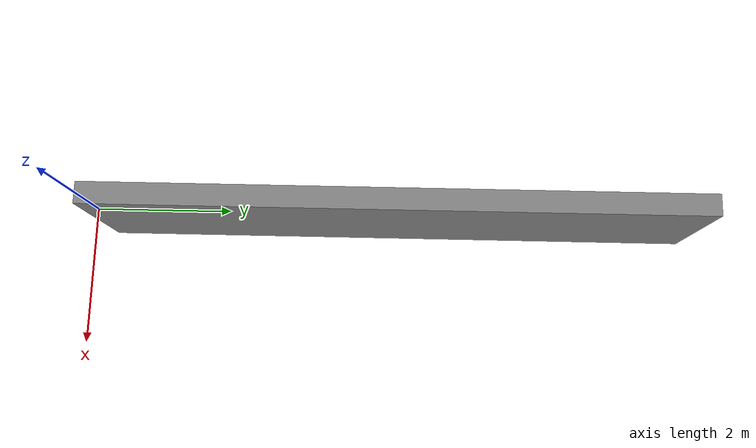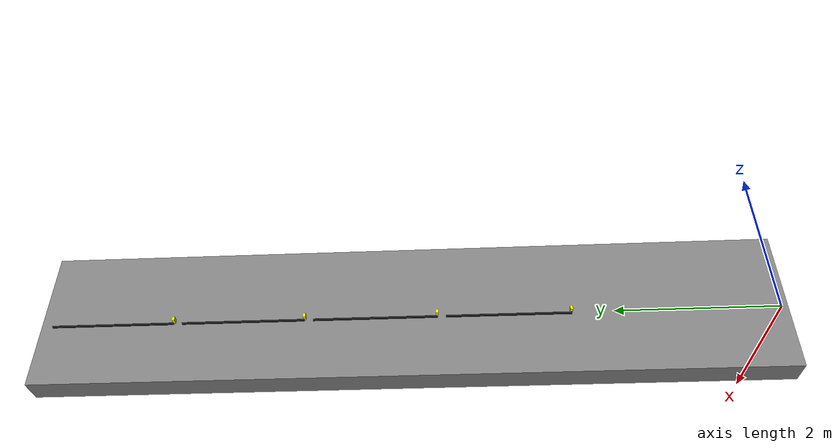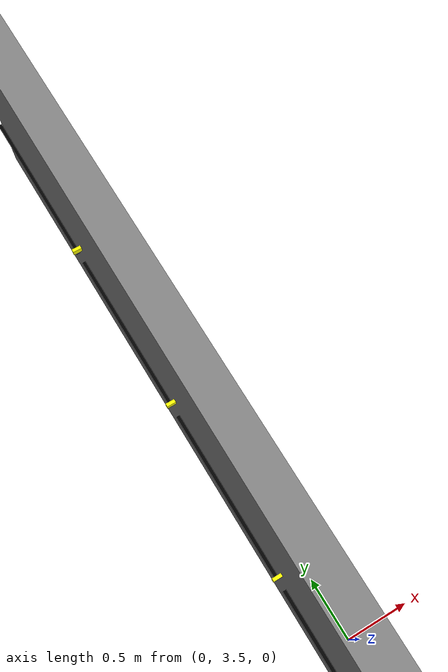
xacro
<?xml version="1.0"?>
<robot xmlns:xacro="http://www.ros.org/wiki/xacro" name="my_conveyor_belt">

    <xacro:property name="base_length" value="9.0"/>
    <xacro:property name="base_width" value="0.32"/>
    <xacro:property name="base_height" value="0.8"/>
    <xacro:property name="axle_length" value="0.03"/>
    <xacro:property name="axle_width" value="0.08"/>
    <xacro:property name="axle_height" value="0.05"/>
    <xacro:property name="arm_length" value="1.50"/>
    <xacro:property name="arm_width" value="0.032"/>
    <xacro:property name="arm_height" value="0.016"/>
    <xacro:property name="axle_spacing" value="1.6"/>
    <xacro:property name="pi_" value="3.14159265359"/>

    <!-- Materials -->
    <material name="gray">
        <color rgba="0.5 0.5 0.5 1.0"/>
    </material>
    <material name="yellow">
        <color rgba="1.0 1.0 0.0 1.0"/>
    </material>
    <material name="black">
        <color rgba="0.0 0.0 0.0 1.0"/>
    </material>

    <!-- Macros for Links -->
    <xacro:macro name="box_link" params="name length width height material mass">
        <link name="${name}">
            <visual>
                <geometry>
                    <box size="${length} ${width} ${height}"/>
                </geometry>
                <origin rpy="0 0 0" xyz="${-length/2} 0 0"/>
                <material name="${material}"/>
            </visual>
            <collision>
                <geometry>
                    <box size="${length} ${width} ${height}"/>
                </geometry>
                <origin rpy="0 0 0" xyz="${-length/2} 0 0"/>
            </collision>
            <inertial>
        <mass value="${mass}"/>
        <inertia ixx="1000" ixy="0.0" ixz="0.0"
                 iyy="1000" iyz="0.0"
                 izz="1000"/>
      </inertial>
        </link>

    </xacro:macro>

    <!-- Macros for Joints -->
    <xacro:macro name="fixed_joint" params="name parent child x y z">
        <joint name="${name}" type="fixed">
            <parent link="${parent}"/>
            <child link="${child}"/>
            <origin xyz="${x} ${y} ${z}" rpy="0 0 0"/>
        </joint>
    </xacro:macro>

    <xacro:macro name="revolute_joint" params="name parent child x y z rpy lower_limit upper_limit axis">
         <joint name="${name}" type="revolute">
            <parent link="${parent}"/>
            <child link="${child}"/>
            <origin xyz="${x} ${y} ${z}" rpy="${rpy}"/>
            <axis xyz="${axis}"/>
            <limit lower="${lower_limit}" upper="${upper_limit}" effort="1000" velocity="100"/>
        </joint>
    </xacro:macro>

    <!-- World Link and Joint to ground the robot -->
    <link name="world_link"/>
    <joint name="world_joint" type="fixed">
        <parent link="world_link"/>
        <child link="base_link"/>

        <origin xyz="0 0 0" rpy="0 0 ${pi * 1.5}"/>
    </joint>

    <!-- Base Link -->
    <xacro:box_link name="base_link" length="${base_length}" width="${base_width}" height="${base_height + 1}" material="gray" mass="10000.0"/>

    <!-- Macro for Axle and Bar unit -->
    <xacro:macro name="axle_and_arm" params="index">

        <xacro:property name="x_pos" value="${-base_length + 1.3 + axle_spacing * (index + 0.23)}"/>

        <xacro:box_link name="axle_${index}" length="${axle_length}" width="${axle_width}" height="${axle_height}" material="yellow" mass="200.0"/>

        <xacro:fixed_joint name="base_to_axle_${index}" parent="base_link" child="axle_${index}"
                           x="${x_pos}" y="${-base_width/2 - axle_width/2}" z="${-base_height/6 + axle_height}"/>

        <!-- Arm (Box) Link -->
        <xacro:box_link name="arm_${index}" length="${arm_length}" width="${arm_width}" height="${arm_height}" material="black" mass="500.0"/>

        <!-- Joint: Axle Link to Bar Link (Revolute) -->
        <xacro:revolute_joint name="axle_${index}_to_arm_${index}"
                              parent="axle_${index}"
                              child="arm_${index}"
                              x="${-axle_length/3}"
                              y="0"
                              z="${-axle_height}"
                              rpy="0 0 0"
                              lower_limit="0"
                              upper_limit="${pi_/4}"
                              axis="0 0 1"
                              />
    </xacro:macro>

    <!-- Create 4 units -->
    <xacro:axle_and_arm index="0"/>
    <xacro:axle_and_arm index="1"/>
    <xacro:axle_and_arm index="2"/>
    <xacro:axle_and_arm index="3"/>

<!-- Plugin Gazebo Classic -->
  <gazebo>
    <plugin name="gazebo_ros2_control" filename="libgazebo_ros2_control.so">
      <robot_namespace>my_conveyor_belt_robot</robot_namespace>
      <parameters>$(find my_conveyor_gazebo)/config/controllers.yaml</parameters>
      <robot_sim_type>gazebo_ros2_control/GazeboSystem</robot_sim_type>
    </plugin>
  </gazebo>

  <!-- ROS 2 Control hardware interface -->
  <ros2_control name="GazeboSystem" type="system">
    <hardware>
      <plugin>gazebo_ros2_control/GazeboSystem</plugin>
    </hardware>
    <joint name="axle_0_to_arm_0">
      <command_interface name="position"/>
      <state_interface name="position"/>
      <state_interface name="velocity"/>
    </joint>
    <joint name="axle_1_to_arm_1">
      <command_interface name="position"/>
      <state_interface name="position"/>
      <state_interface name="velocity"/>
    </joint>
    <joint name="axle_2_to_arm_2">
      <command_interface name="position"/>
      <state_interface name="position"/>
      <state_interface name="velocity"/>
    </joint>
    <joint name="axle_3_to_arm_3">
      <command_interface name="position"/>
      <state_interface name="position"/>
      <state_interface name="velocity"/>
    </joint>
  </ros2_control>

  <!-- Gazebo Material -->
  <gazebo reference="base_link">
    <material>Gazebo/Grey</material>
  </gazebo>
  <gazebo reference="axle_0">
    <material>Gazebo/Yellow</material>
  </gazebo>
  <gazebo reference="axle_1">
    <material>Gazebo/Yellow</material>
  </gazebo>
  <gazebo reference="axle_2">
    <material>Gazebo/Yellow</material>
  </gazebo>
  <gazebo reference="axle_3">
    <material>Gazebo/Yellow</material>
  </gazebo>
  <gazebo reference="arm_0">
    <material>Gazebo/Black</material>
  </gazebo>
  <gazebo reference="arm_1">
    <material>Gazebo/Black</material>
  </gazebo>
  <gazebo reference="arm_2">
    <material>Gazebo/Black</material>
  </gazebo>
  <gazebo reference="arm_3">
    <material>Gazebo/Black</material>
  </gazebo>

</robot>
